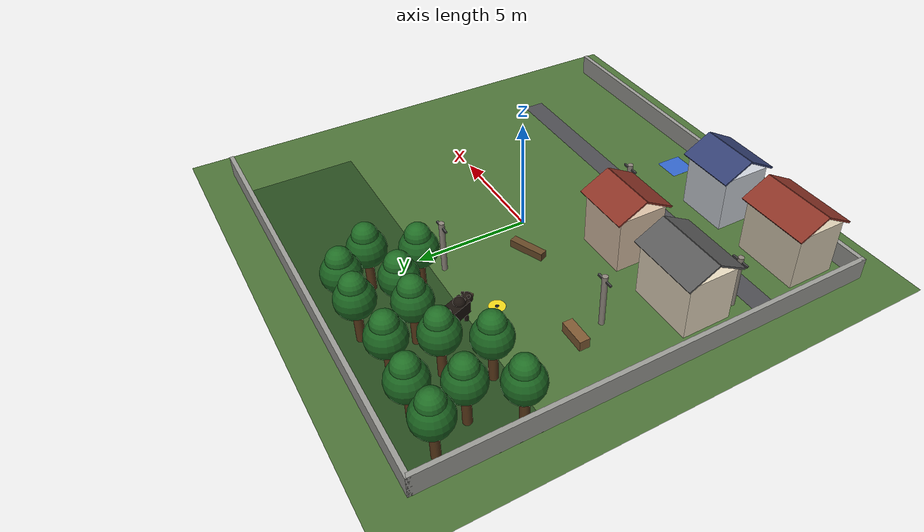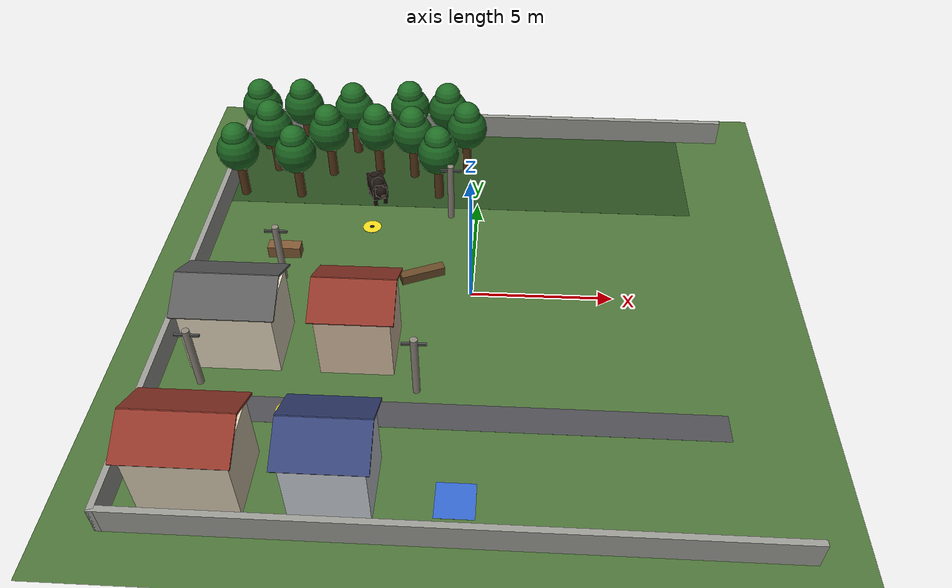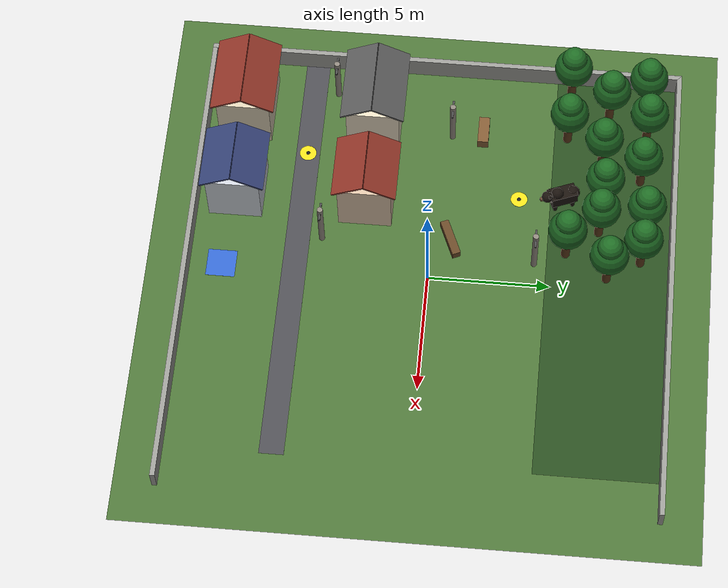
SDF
<sdf version="1.6">
 <world name="kumawatch_patrol">
  <model name="ground_plane">
   <static>true</static>
   <link name="link">
    <collision name="collision">
     <geometry><plane><normal>0 0 1</normal><size>60 60</size></plane></geometry>
     <surface><friction><ode><mu>100</mu><mu2>50</mu2></ode></friction></surface>
    </collision>
    <visual name="visual">
     <cast_shadows>false</cast_shadows>
     <geometry><plane><normal>0 0 1</normal><size>60 60</size></plane></geometry>
     <material><ambient>0.30 0.45 0.22 1</ambient><diffuse>0.30 0.45 0.22 1</diffuse></material>
    </visual>
   </link>
  </model>
  <model name="wall_north">
   <static>true</static>
   <pose>0.000 9.900 0.000 0.000 0.000 0.000</pose>
   <link name="link">
    <visual name="visual">
     <pose>0.000 0.000 0.500 0.000 0.000 0.000</pose>
     <geometry><box><size>20.000 0.200 1.000</size></box></geometry>
     <material>
      <ambient>0.600 0.600 0.580 1.00</ambient>
      <diffuse>0.600 0.600 0.580 1.00</diffuse>
      <specular>0.05 0.05 0.05 1</specular>
     </material>
    </visual>
    <collision name="collision">
     <pose>0.000 0.000 0.500 0.000 0.000 0.000</pose>
     <geometry><box><size>20.000 0.200 1.000</size></box></geometry>
    </collision>
   </link>
  </model>
  <model name="wall_south">
   <static>true</static>
   <pose>0.000 -9.900 0.000 0.000 0.000 0.000</pose>
   <link name="link">
    <visual name="visual">
     <pose>0.000 0.000 0.500 0.000 0.000 0.000</pose>
     <geometry><box><size>20.000 0.200 1.000</size></box></geometry>
     <material>
      <ambient>0.600 0.600 0.580 1.00</ambient>
      <diffuse>0.600 0.600 0.580 1.00</diffuse>
      <specular>0.05 0.05 0.05 1</specular>
     </material>
    </visual>
    <collision name="collision">
     <pose>0.000 0.000 0.500 0.000 0.000 0.000</pose>
     <geometry><box><size>20.000 0.200 1.000</size></box></geometry>
    </collision>
   </link>
  </model>
  <model name="wall_west">
   <static>true</static>
   <pose>-9.900 0.000 0.000 0.000 0.000 0.000</pose>
   <link name="link">
    <visual name="visual">
     <pose>0.000 0.000 0.500 0.000 0.000 0.000</pose>
     <geometry><box><size>0.200 20.000 1.000</size></box></geometry>
     <material>
      <ambient>0.600 0.600 0.580 1.00</ambient>
      <diffuse>0.600 0.600 0.580 1.00</diffuse>
      <specular>0.05 0.05 0.05 1</specular>
     </material>
    </visual>
    <collision name="collision">
     <pose>0.000 0.000 0.500 0.000 0.000 0.000</pose>
     <geometry><box><size>0.200 20.000 1.000</size></box></geometry>
    </collision>
   </link>
  </model>
  <model name="surface_forest_floor">
   <static>true</static>
   <pose>-0.850 7.400 0.000 0.000 0.000 0.000</pose>
   <link name="link">
    <visual name="visual">
     <pose>0.000 0.000 0.002 0.000 0.000 0.000</pose>
     <geometry><box><size>18.300 5.200 0.002</size></box></geometry>
     <material>
      <ambient>0.160 0.300 0.120 1.00</ambient>
      <diffuse>0.160 0.300 0.120 1.00</diffuse>
      <specular>0.05 0.05 0.05 1</specular>
     </material>
    </visual>
   </link>
  </model>
  <model name="surface_road">
   <static>true</static>
   <pose>-0.850 -5.500 0.000 0.000 0.000 0.000</pose>
   <link name="link">
    <visual name="visual">
     <pose>0.000 0.000 0.003 0.000 0.000 0.000</pose>
     <geometry><box><size>18.300 1.000 0.002</size></box></geometry>
     <material>
      <ambient>0.300 0.300 0.320 1.00</ambient>
      <diffuse>0.300 0.300 0.320 1.00</diffuse>
      <specular>0.05 0.05 0.05 1</specular>
     </material>
    </visual>
   </link>
  </model>
  <model name="surface_base_pad">
   <static>true</static>
   <pose>0.000 -8.500 0.000 0.000 0.000 0.000</pose>
   <link name="link">
    <visual name="visual">
     <pose>0.000 0.000 0.006 0.000 0.000 0.000</pose>
     <geometry><box><size>1.200 1.200 0.002</size></box></geometry>
     <material>
      <ambient>0.200 0.400 0.800 1.00</ambient>
      <diffuse>0.200 0.400 0.800 1.00</diffuse>
      <specular>0.05 0.05 0.05 1</specular>
     </material>
    </visual>
   </link>
  </model>
  <model name="house_1">
   <static>true</static>
   <pose>-7.500 -8.200 0.000 0.000 0.000 0.000</pose>
   <link name="link">
    <visual name="walls">
     <pose>0.000 0.000 1.250 0.000 0.000 0.000</pose>
     <geometry><box><size>3.000 2.200 2.500</size></box></geometry>
     <material>
      <ambient>0.850 0.800 0.700 1.00</ambient>
      <diffuse>0.850 0.800 0.700 1.00</diffuse>
      <specular>0.05 0.05 0.05 1</specular>
     </material>
    </visual>
    <collision name="collision">
     <pose>0.000 0.000 1.250 0.000 0.000 0.000</pose>
     <geometry><box><size>3.000 2.200 2.500</size></box></geometry>
    </collision>
    <visual name="roof_0">
     <pose>0.000 0.650 2.855 -0.500 0.000 0.000</pose>
     <geometry><box><size>3.300 1.481 0.080</size></box></geometry>
     <material>
      <ambient>0.550 0.200 0.150 1.00</ambient>
      <diffuse>0.550 0.200 0.150 1.00</diffuse>
      <specular>0.05 0.05 0.05 1</specular>
     </material>
    </visual>
    <visual name="roof_1">
     <pose>0.000 -0.650 2.855 0.500 0.000 0.000</pose>
     <geometry><box><size>3.300 1.481 0.080</size></box></geometry>
     <material>
      <ambient>0.550 0.200 0.150 1.00</ambient>
      <diffuse>0.550 0.200 0.150 1.00</diffuse>
      <specular>0.05 0.05 0.05 1</specular>
     </material>
    </visual>
   </link>
  </model>
  <model name="house_2">
   <static>true</static>
   <pose>-3.500 -8.200 0.000 0.000 0.000 0.000</pose>
   <link name="link">
    <visual name="walls">
     <pose>0.000 0.000 1.250 0.000 0.000 0.000</pose>
     <geometry><box><size>2.400 2.200 2.500</size></box></geometry>
     <material>
      <ambient>0.800 0.820 0.850 1.00</ambient>
      <diffuse>0.800 0.820 0.850 1.00</diffuse>
      <specular>0.05 0.05 0.05 1</specular>
     </material>
    </visual>
    <collision name="collision">
     <pose>0.000 0.000 1.250 0.000 0.000 0.000</pose>
     <geometry><box><size>2.400 2.200 2.500</size></box></geometry>
    </collision>
    <visual name="roof_0">
     <pose>0.000 0.650 2.855 -0.500 0.000 0.000</pose>
     <geometry><box><size>2.700 1.481 0.080</size></box></geometry>
     <material>
      <ambient>0.200 0.250 0.450 1.00</ambient>
      <diffuse>0.200 0.250 0.450 1.00</diffuse>
      <specular>0.05 0.05 0.05 1</specular>
     </material>
    </visual>
    <visual name="roof_1">
     <pose>0.000 -0.650 2.855 0.500 0.000 0.000</pose>
     <geometry><box><size>2.700 1.481 0.080</size></box></geometry>
     <material>
      <ambient>0.200 0.250 0.450 1.00</ambient>
      <diffuse>0.200 0.250 0.450 1.00</diffuse>
      <specular>0.05 0.05 0.05 1</specular>
     </material>
    </visual>
   </link>
  </model>
  <model name="house_3">
   <static>true</static>
   <pose>-7.500 -2.800 0.000 0.000 0.000 0.000</pose>
   <link name="link">
    <visual name="walls">
     <pose>0.000 0.000 1.250 0.000 0.000 0.000</pose>
     <geometry><box><size>3.000 2.200 2.500</size></box></geometry>
     <material>
      <ambient>0.900 0.850 0.750 1.00</ambient>
      <diffuse>0.900 0.850 0.750 1.00</diffuse>
      <specular>0.05 0.05 0.05 1</specular>
     </material>
    </visual>
    <collision name="collision">
     <pose>0.000 0.000 1.250 0.000 0.000 0.000</pose>
     <geometry><box><size>3.000 2.200 2.500</size></box></geometry>
    </collision>
    <visual name="roof_0">
     <pose>0.000 0.650 2.855 -0.500 0.000 0.000</pose>
     <geometry><box><size>3.300 1.481 0.080</size></box></geometry>
     <material>
      <ambient>0.350 0.350 0.350 1.00</ambient>
      <diffuse>0.350 0.350 0.350 1.00</diffuse>
      <specular>0.05 0.05 0.05 1</specular>
     </material>
    </visual>
    <visual name="roof_1">
     <pose>0.000 -0.650 2.855 0.500 0.000 0.000</pose>
     <geometry><box><size>3.300 1.481 0.080</size></box></geometry>
     <material>
      <ambient>0.350 0.350 0.350 1.00</ambient>
      <diffuse>0.350 0.350 0.350 1.00</diffuse>
      <specular>0.05 0.05 0.05 1</specular>
     </material>
    </visual>
   </link>
  </model>
  <model name="house_4">
   <static>true</static>
   <pose>-3.500 -2.800 0.000 0.000 0.000 0.000</pose>
   <link name="link">
    <visual name="walls">
     <pose>0.000 0.000 1.250 0.000 0.000 0.000</pose>
     <geometry><box><size>2.400 2.200 2.500</size></box></geometry>
     <material>
      <ambient>0.850 0.750 0.650 1.00</ambient>
      <diffuse>0.850 0.750 0.650 1.00</diffuse>
      <specular>0.05 0.05 0.05 1</specular>
     </material>
    </visual>
    <collision name="collision">
     <pose>0.000 0.000 1.250 0.000 0.000 0.000</pose>
     <geometry><box><size>2.400 2.200 2.500</size></box></geometry>
    </collision>
    <visual name="roof_0">
     <pose>0.000 0.650 2.855 -0.500 0.000 0.000</pose>
     <geometry><box><size>2.700 1.481 0.080</size></box></geometry>
     <material>
      <ambient>0.550 0.200 0.150 1.00</ambient>
      <diffuse>0.550 0.200 0.150 1.00</diffuse>
      <specular>0.05 0.05 0.05 1</specular>
     </material>
    </visual>
    <visual name="roof_1">
     <pose>0.000 -0.650 2.855 0.500 0.000 0.000</pose>
     <geometry><box><size>2.700 1.481 0.080</size></box></geometry>
     <material>
      <ambient>0.550 0.200 0.150 1.00</ambient>
      <diffuse>0.550 0.200 0.150 1.00</diffuse>
      <specular>0.05 0.05 0.05 1</specular>
     </material>
    </visual>
   </link>
  </model>
  <model name="tree_00">
   <static>true</static>
   <pose>-9.340 5.390 0.000 0.000 0.000 0.000</pose>
   <link name="link">
    <visual name="trunk">
     <pose>0.000 0.000 0.800 0.000 0.000 0.000</pose>
     <geometry><cylinder><radius>0.180</radius><length>1.600</length></cylinder></geometry>
     <material>
      <ambient>0.350 0.220 0.100 1.00</ambient>
      <diffuse>0.350 0.220 0.100 1.00</diffuse>
      <specular>0.05 0.05 0.05 1</specular>
     </material>
    </visual>
    <collision name="collision">
     <pose>0.000 0.000 0.800 0.000 0.000 0.000</pose>
     <geometry><cylinder><radius>0.180</radius><length>1.600</length></cylinder></geometry>
    </collision>
    <visual name="canopy">
     <pose>0.000 0.000 2.080 0.000 0.000 0.000</pose>
     <geometry><sphere><radius>0.800</radius></sphere></geometry>
     <material>
      <ambient>0.100 0.380 0.120 1.00</ambient>
      <diffuse>0.100 0.380 0.120 1.00</diffuse>
      <specular>0.05 0.05 0.05 1</specular>
     </material>
    </visual>
    <visual name="canopy_top">
     <pose>0.000 0.000 2.720 0.000 0.000 0.000</pose>
     <geometry><sphere><radius>0.520</radius></sphere></geometry>
     <material>
      <ambient>0.120 0.420 0.140 1.00</ambient>
      <diffuse>0.120 0.420 0.140 1.00</diffuse>
      <specular>0.05 0.05 0.05 1</specular>
     </material>
    </visual>
   </link>
  </model>
  <model name="tree_01">
   <static>true</static>
   <pose>-7.080 5.340 0.000 0.000 0.000 0.000</pose>
   <link name="link">
    <visual name="trunk">
     <pose>0.000 0.000 0.800 0.000 0.000 0.000</pose>
     <geometry><cylinder><radius>0.180</radius><length>1.600</length></cylinder></geometry>
     <material>
      <ambient>0.350 0.220 0.100 1.00</ambient>
      <diffuse>0.350 0.220 0.100 1.00</diffuse>
      <specular>0.05 0.05 0.05 1</specular>
     </material>
    </visual>
    <collision name="collision">
     <pose>0.000 0.000 0.800 0.000 0.000 0.000</pose>
     <geometry><cylinder><radius>0.180</radius><length>1.600</length></cylinder></geometry>
    </collision>
    <visual name="canopy">
     <pose>0.000 0.000 2.080 0.000 0.000 0.000</pose>
     <geometry><sphere><radius>0.800</radius></sphere></geometry>
     <material>
      <ambient>0.100 0.380 0.120 1.00</ambient>
      <diffuse>0.100 0.380 0.120 1.00</diffuse>
      <specular>0.05 0.05 0.05 1</specular>
     </material>
    </visual>
    <visual name="canopy_top">
     <pose>0.000 0.000 2.720 0.000 0.000 0.000</pose>
     <geometry><sphere><radius>0.520</radius></sphere></geometry>
     <material>
      <ambient>0.120 0.420 0.140 1.00</ambient>
      <diffuse>0.120 0.420 0.140 1.00</diffuse>
      <specular>0.05 0.05 0.05 1</specular>
     </material>
    </visual>
   </link>
  </model>
  <model name="tree_02">
   <static>true</static>
   <pose>-1.570 5.560 0.000 0.000 0.000 0.000</pose>
   <link name="link">
    <visual name="trunk">
     <pose>0.000 0.000 0.800 0.000 0.000 0.000</pose>
     <geometry><cylinder><radius>0.180</radius><length>1.600</length></cylinder></geometry>
     <material>
      <ambient>0.350 0.220 0.100 1.00</ambient>
      <diffuse>0.350 0.220 0.100 1.00</diffuse>
      <specular>0.05 0.05 0.05 1</specular>
     </material>
    </visual>
    <collision name="collision">
     <pose>0.000 0.000 0.800 0.000 0.000 0.000</pose>
     <geometry><cylinder><radius>0.180</radius><length>1.600</length></cylinder></geometry>
    </collision>
    <visual name="canopy">
     <pose>0.000 0.000 2.080 0.000 0.000 0.000</pose>
     <geometry><sphere><radius>0.800</radius></sphere></geometry>
     <material>
      <ambient>0.100 0.380 0.120 1.00</ambient>
      <diffuse>0.100 0.380 0.120 1.00</diffuse>
      <specular>0.05 0.05 0.05 1</specular>
     </material>
    </visual>
    <visual name="canopy_top">
     <pose>0.000 0.000 2.720 0.000 0.000 0.000</pose>
     <geometry><sphere><radius>0.520</radius></sphere></geometry>
     <material>
      <ambient>0.120 0.420 0.140 1.00</ambient>
      <diffuse>0.120 0.420 0.140 1.00</diffuse>
      <specular>0.05 0.05 0.05 1</specular>
     </material>
    </visual>
   </link>
  </model>
  <model name="tree_07">
   <static>true</static>
   <pose>-8.340 7.040 0.000 0.000 0.000 0.000</pose>
   <link name="link">
    <visual name="trunk">
     <pose>0.000 0.000 0.800 0.000 0.000 0.000</pose>
     <geometry><cylinder><radius>0.180</radius><length>1.600</length></cylinder></geometry>
     <material>
      <ambient>0.350 0.220 0.100 1.00</ambient>
      <diffuse>0.350 0.220 0.100 1.00</diffuse>
      <specular>0.05 0.05 0.05 1</specular>
     </material>
    </visual>
    <collision name="collision">
     <pose>0.000 0.000 0.800 0.000 0.000 0.000</pose>
     <geometry><cylinder><radius>0.180</radius><length>1.600</length></cylinder></geometry>
    </collision>
    <visual name="canopy">
     <pose>0.000 0.000 2.080 0.000 0.000 0.000</pose>
     <geometry><sphere><radius>0.800</radius></sphere></geometry>
     <material>
      <ambient>0.100 0.380 0.120 1.00</ambient>
      <diffuse>0.100 0.380 0.120 1.00</diffuse>
      <specular>0.05 0.05 0.05 1</specular>
     </material>
    </visual>
    <visual name="canopy_top">
     <pose>0.000 0.000 2.720 0.000 0.000 0.000</pose>
     <geometry><sphere><radius>0.520</radius></sphere></geometry>
     <material>
      <ambient>0.120 0.420 0.140 1.00</ambient>
      <diffuse>0.120 0.420 0.140 1.00</diffuse>
      <specular>0.05 0.05 0.05 1</specular>
     </material>
    </visual>
   </link>
  </model>
  <model name="tree_08">
   <static>true</static>
   <pose>-6.020 6.830 0.000 0.000 0.000 0.000</pose>
   <link name="link">
    <visual name="trunk">
     <pose>0.000 0.000 0.800 0.000 0.000 0.000</pose>
     <geometry><cylinder><radius>0.180</radius><length>1.600</length></cylinder></geometry>
     <material>
      <ambient>0.350 0.220 0.100 1.00</ambient>
      <diffuse>0.350 0.220 0.100 1.00</diffuse>
      <specular>0.05 0.05 0.05 1</specular>
     </material>
    </visual>
    <collision name="collision">
     <pose>0.000 0.000 0.800 0.000 0.000 0.000</pose>
     <geometry><cylinder><radius>0.180</radius><length>1.600</length></cylinder></geometry>
    </collision>
    <visual name="canopy">
     <pose>0.000 0.000 2.080 0.000 0.000 0.000</pose>
     <geometry><sphere><radius>0.800</radius></sphere></geometry>
     <material>
      <ambient>0.100 0.380 0.120 1.00</ambient>
      <diffuse>0.100 0.380 0.120 1.00</diffuse>
      <specular>0.05 0.05 0.05 1</specular>
     </material>
    </visual>
    <visual name="canopy_top">
     <pose>0.000 0.000 2.720 0.000 0.000 0.000</pose>
     <geometry><sphere><radius>0.520</radius></sphere></geometry>
     <material>
      <ambient>0.120 0.420 0.140 1.00</ambient>
      <diffuse>0.120 0.420 0.140 1.00</diffuse>
      <specular>0.05 0.05 0.05 1</specular>
     </material>
    </visual>
   </link>
  </model>
  <model name="tree_09">
   <static>true</static>
   <pose>-4.110 6.970 0.000 0.000 0.000 0.000</pose>
   <link name="link">
    <visual name="trunk">
     <pose>0.000 0.000 0.800 0.000 0.000 0.000</pose>
     <geometry><cylinder><radius>0.180</radius><length>1.600</length></cylinder></geometry>
     <material>
      <ambient>0.350 0.220 0.100 1.00</ambient>
      <diffuse>0.350 0.220 0.100 1.00</diffuse>
      <specular>0.05 0.05 0.05 1</specular>
     </material>
    </visual>
    <collision name="collision">
     <pose>0.000 0.000 0.800 0.000 0.000 0.000</pose>
     <geometry><cylinder><radius>0.180</radius><length>1.600</length></cylinder></geometry>
    </collision>
    <visual name="canopy">
     <pose>0.000 0.000 2.080 0.000 0.000 0.000</pose>
     <geometry><sphere><radius>0.800</radius></sphere></geometry>
     <material>
      <ambient>0.100 0.380 0.120 1.00</ambient>
      <diffuse>0.100 0.380 0.120 1.00</diffuse>
      <specular>0.05 0.05 0.05 1</specular>
     </material>
    </visual>
    <visual name="canopy_top">
     <pose>0.000 0.000 2.720 0.000 0.000 0.000</pose>
     <geometry><sphere><radius>0.520</radius></sphere></geometry>
     <material>
      <ambient>0.120 0.420 0.140 1.00</ambient>
      <diffuse>0.120 0.420 0.140 1.00</diffuse>
      <specular>0.05 0.05 0.05 1</specular>
     </material>
    </visual>
   </link>
  </model>
  <model name="tree_10">
   <static>true</static>
   <pose>-2.680 6.870 0.000 0.000 0.000 0.000</pose>
   <link name="link">
    <visual name="trunk">
     <pose>0.000 0.000 0.800 0.000 0.000 0.000</pose>
     <geometry><cylinder><radius>0.180</radius><length>1.600</length></cylinder></geometry>
     <material>
      <ambient>0.350 0.220 0.100 1.00</ambient>
      <diffuse>0.350 0.220 0.100 1.00</diffuse>
      <specular>0.05 0.05 0.05 1</specular>
     </material>
    </visual>
    <collision name="collision">
     <pose>0.000 0.000 0.800 0.000 0.000 0.000</pose>
     <geometry><cylinder><radius>0.180</radius><length>1.600</length></cylinder></geometry>
    </collision>
    <visual name="canopy">
     <pose>0.000 0.000 2.080 0.000 0.000 0.000</pose>
     <geometry><sphere><radius>0.800</radius></sphere></geometry>
     <material>
      <ambient>0.100 0.380 0.120 1.00</ambient>
      <diffuse>0.100 0.380 0.120 1.00</diffuse>
      <specular>0.05 0.05 0.05 1</specular>
     </material>
    </visual>
    <visual name="canopy_top">
     <pose>0.000 0.000 2.720 0.000 0.000 0.000</pose>
     <geometry><sphere><radius>0.520</radius></sphere></geometry>
     <material>
      <ambient>0.120 0.420 0.140 1.00</ambient>
      <diffuse>0.120 0.420 0.140 1.00</diffuse>
      <specular>0.05 0.05 0.05 1</specular>
     </material>
    </visual>
   </link>
  </model>
  <model name="tree_11">
   <static>true</static>
   <pose>-0.550 7.290 0.000 0.000 0.000 0.000</pose>
   <link name="link">
    <visual name="trunk">
     <pose>0.000 0.000 0.800 0.000 0.000 0.000</pose>
     <geometry><cylinder><radius>0.180</radius><length>1.600</length></cylinder></geometry>
     <material>
      <ambient>0.350 0.220 0.100 1.00</ambient>
      <diffuse>0.350 0.220 0.100 1.00</diffuse>
      <specular>0.05 0.05 0.05 1</specular>
     </material>
    </visual>
    <collision name="collision">
     <pose>0.000 0.000 0.800 0.000 0.000 0.000</pose>
     <geometry><cylinder><radius>0.180</radius><length>1.600</length></cylinder></geometry>
    </collision>
    <visual name="canopy">
     <pose>0.000 0.000 2.080 0.000 0.000 0.000</pose>
     <geometry><sphere><radius>0.800</radius></sphere></geometry>
     <material>
      <ambient>0.100 0.380 0.120 1.00</ambient>
      <diffuse>0.100 0.380 0.120 1.00</diffuse>
      <specular>0.05 0.05 0.05 1</specular>
     </material>
    </visual>
    <visual name="canopy_top">
     <pose>0.000 0.000 2.720 0.000 0.000 0.000</pose>
     <geometry><sphere><radius>0.520</radius></sphere></geometry>
     <material>
      <ambient>0.120 0.420 0.140 1.00</ambient>
      <diffuse>0.120 0.420 0.140 1.00</diffuse>
      <specular>0.05 0.05 0.05 1</specular>
     </material>
    </visual>
   </link>
  </model>
  <model name="tree_16">
   <static>true</static>
   <pose>-9.060 8.560 0.000 0.000 0.000 0.000</pose>
   <link name="link">
    <visual name="trunk">
     <pose>0.000 0.000 0.800 0.000 0.000 0.000</pose>
     <geometry><cylinder><radius>0.180</radius><length>1.600</length></cylinder></geometry>
     <material>
      <ambient>0.350 0.220 0.100 1.00</ambient>
      <diffuse>0.350 0.220 0.100 1.00</diffuse>
      <specular>0.05 0.05 0.05 1</specular>
     </material>
    </visual>
    <collision name="collision">
     <pose>0.000 0.000 0.800 0.000 0.000 0.000</pose>
     <geometry><cylinder><radius>0.180</radius><length>1.600</length></cylinder></geometry>
    </collision>
    <visual name="canopy">
     <pose>0.000 0.000 2.080 0.000 0.000 0.000</pose>
     <geometry><sphere><radius>0.800</radius></sphere></geometry>
     <material>
      <ambient>0.100 0.380 0.120 1.00</ambient>
      <diffuse>0.100 0.380 0.120 1.00</diffuse>
      <specular>0.05 0.05 0.05 1</specular>
     </material>
    </visual>
    <visual name="canopy_top">
     <pose>0.000 0.000 2.720 0.000 0.000 0.000</pose>
     <geometry><sphere><radius>0.520</radius></sphere></geometry>
     <material>
      <ambient>0.120 0.420 0.140 1.00</ambient>
      <diffuse>0.120 0.420 0.140 1.00</diffuse>
      <specular>0.05 0.05 0.05 1</specular>
     </material>
    </visual>
   </link>
  </model>
  <model name="tree_17">
   <static>true</static>
   <pose>-7.350 8.650 0.000 0.000 0.000 0.000</pose>
   <link name="link">
    <visual name="trunk">
     <pose>0.000 0.000 0.800 0.000 0.000 0.000</pose>
     <geometry><cylinder><radius>0.180</radius><length>1.600</length></cylinder></geometry>
     <material>
      <ambient>0.350 0.220 0.100 1.00</ambient>
      <diffuse>0.350 0.220 0.100 1.00</diffuse>
      <specular>0.05 0.05 0.05 1</specular>
     </material>
    </visual>
    <collision name="collision">
     <pose>0.000 0.000 0.800 0.000 0.000 0.000</pose>
     <geometry><cylinder><radius>0.180</radius><length>1.600</length></cylinder></geometry>
    </collision>
    <visual name="canopy">
     <pose>0.000 0.000 2.080 0.000 0.000 0.000</pose>
     <geometry><sphere><radius>0.800</radius></sphere></geometry>
     <material>
      <ambient>0.100 0.380 0.120 1.00</ambient>
      <diffuse>0.100 0.380 0.120 1.00</diffuse>
      <specular>0.05 0.05 0.05 1</specular>
     </material>
    </visual>
    <visual name="canopy_top">
     <pose>0.000 0.000 2.720 0.000 0.000 0.000</pose>
     <geometry><sphere><radius>0.520</radius></sphere></geometry>
     <material>
      <ambient>0.120 0.420 0.140 1.00</ambient>
      <diffuse>0.120 0.420 0.140 1.00</diffuse>
      <specular>0.05 0.05 0.05 1</specular>
     </material>
    </visual>
   </link>
  </model>
  <model name="tree_18">
   <static>true</static>
   <pose>-5.240 8.480 0.000 0.000 0.000 0.000</pose>
   <link name="link">
    <visual name="trunk">
     <pose>0.000 0.000 0.800 0.000 0.000 0.000</pose>
     <geometry><cylinder><radius>0.180</radius><length>1.600</length></cylinder></geometry>
     <material>
      <ambient>0.350 0.220 0.100 1.00</ambient>
      <diffuse>0.350 0.220 0.100 1.00</diffuse>
      <specular>0.05 0.05 0.05 1</specular>
     </material>
    </visual>
    <collision name="collision">
     <pose>0.000 0.000 0.800 0.000 0.000 0.000</pose>
     <geometry><cylinder><radius>0.180</radius><length>1.600</length></cylinder></geometry>
    </collision>
    <visual name="canopy">
     <pose>0.000 0.000 2.080 0.000 0.000 0.000</pose>
     <geometry><sphere><radius>0.800</radius></sphere></geometry>
     <material>
      <ambient>0.100 0.380 0.120 1.00</ambient>
      <diffuse>0.100 0.380 0.120 1.00</diffuse>
      <specular>0.05 0.05 0.05 1</specular>
     </material>
    </visual>
    <visual name="canopy_top">
     <pose>0.000 0.000 2.720 0.000 0.000 0.000</pose>
     <geometry><sphere><radius>0.520</radius></sphere></geometry>
     <material>
      <ambient>0.120 0.420 0.140 1.00</ambient>
      <diffuse>0.120 0.420 0.140 1.00</diffuse>
      <specular>0.05 0.05 0.05 1</specular>
     </material>
    </visual>
   </link>
  </model>
  <model name="tree_19">
   <static>true</static>
   <pose>-2.960 8.720 0.000 0.000 0.000 0.000</pose>
   <link name="link">
    <visual name="trunk">
     <pose>0.000 0.000 0.800 0.000 0.000 0.000</pose>
     <geometry><cylinder><radius>0.180</radius><length>1.600</length></cylinder></geometry>
     <material>
      <ambient>0.350 0.220 0.100 1.00</ambient>
      <diffuse>0.350 0.220 0.100 1.00</diffuse>
      <specular>0.05 0.05 0.05 1</specular>
     </material>
    </visual>
    <collision name="collision">
     <pose>0.000 0.000 0.800 0.000 0.000 0.000</pose>
     <geometry><cylinder><radius>0.180</radius><length>1.600</length></cylinder></geometry>
    </collision>
    <visual name="canopy">
     <pose>0.000 0.000 2.080 0.000 0.000 0.000</pose>
     <geometry><sphere><radius>0.800</radius></sphere></geometry>
     <material>
      <ambient>0.100 0.380 0.120 1.00</ambient>
      <diffuse>0.100 0.380 0.120 1.00</diffuse>
      <specular>0.05 0.05 0.05 1</specular>
     </material>
    </visual>
    <visual name="canopy_top">
     <pose>0.000 0.000 2.720 0.000 0.000 0.000</pose>
     <geometry><sphere><radius>0.520</radius></sphere></geometry>
     <material>
      <ambient>0.120 0.420 0.140 1.00</ambient>
      <diffuse>0.120 0.420 0.140 1.00</diffuse>
      <specular>0.05 0.05 0.05 1</specular>
     </material>
    </visual>
   </link>
  </model>
  <model name="tree_20">
   <static>true</static>
   <pose>-1.400 8.640 0.000 0.000 0.000 0.000</pose>
   <link name="link">
    <visual name="trunk">
     <pose>0.000 0.000 0.800 0.000 0.000 0.000</pose>
     <geometry><cylinder><radius>0.180</radius><length>1.600</length></cylinder></geometry>
     <material>
      <ambient>0.350 0.220 0.100 1.00</ambient>
      <diffuse>0.350 0.220 0.100 1.00</diffuse>
      <specular>0.05 0.05 0.05 1</specular>
     </material>
    </visual>
    <collision name="collision">
     <pose>0.000 0.000 0.800 0.000 0.000 0.000</pose>
     <geometry><cylinder><radius>0.180</radius><length>1.600</length></cylinder></geometry>
    </collision>
    <visual name="canopy">
     <pose>0.000 0.000 2.080 0.000 0.000 0.000</pose>
     <geometry><sphere><radius>0.800</radius></sphere></geometry>
     <material>
      <ambient>0.100 0.380 0.120 1.00</ambient>
      <diffuse>0.100 0.380 0.120 1.00</diffuse>
      <specular>0.05 0.05 0.05 1</specular>
     </material>
    </visual>
    <visual name="canopy_top">
     <pose>0.000 0.000 2.720 0.000 0.000 0.000</pose>
     <geometry><sphere><radius>0.520</radius></sphere></geometry>
     <material>
      <ambient>0.120 0.420 0.140 1.00</ambient>
      <diffuse>0.120 0.420 0.140 1.00</diffuse>
      <specular>0.05 0.05 0.05 1</specular>
     </material>
    </visual>
   </link>
  </model>
  <model name="pole_00">
   <static>true</static>
   <pose>-8.500 -4.500 0.000 0.000 0.000 0.000</pose>
   <link name="link">
    <visual name="pole">
     <pose>0.000 0.000 1.200 0.000 0.000 0.000</pose>
     <geometry><cylinder><radius>0.120</radius><length>2.400</length></cylinder></geometry>
     <material>
      <ambient>0.550 0.520 0.480 1.00</ambient>
      <diffuse>0.550 0.520 0.480 1.00</diffuse>
      <specular>0.05 0.05 0.05 1</specular>
     </material>
    </visual>
    <collision name="collision">
     <pose>0.000 0.000 1.200 0.000 0.000 0.000</pose>
     <geometry><cylinder><radius>0.120</radius><length>2.400</length></cylinder></geometry>
    </collision>
    <visual name="crossarm">
     <pose>0.000 0.000 2.200 0.000 0.000 0.000</pose>
     <geometry><box><size>0.800 0.080 0.080</size></box></geometry>
     <material>
      <ambient>0.300 0.300 0.300 1.00</ambient>
      <diffuse>0.300 0.300 0.300 1.00</diffuse>
      <specular>0.05 0.05 0.05 1</specular>
     </material>
    </visual>
   </link>
  </model>
  <model name="pole_01">
   <static>true</static>
   <pose>-1.500 -4.500 0.000 0.000 0.000 0.000</pose>
   <link name="link">
    <visual name="pole">
     <pose>0.000 0.000 1.200 0.000 0.000 0.000</pose>
     <geometry><cylinder><radius>0.120</radius><length>2.400</length></cylinder></geometry>
     <material>
      <ambient>0.550 0.520 0.480 1.00</ambient>
      <diffuse>0.550 0.520 0.480 1.00</diffuse>
      <specular>0.05 0.05 0.05 1</specular>
     </material>
    </visual>
    <collision name="collision">
     <pose>0.000 0.000 1.200 0.000 0.000 0.000</pose>
     <geometry><cylinder><radius>0.120</radius><length>2.400</length></cylinder></geometry>
    </collision>
    <visual name="crossarm">
     <pose>0.000 0.000 2.200 0.000 0.000 0.000</pose>
     <geometry><box><size>0.800 0.080 0.080</size></box></geometry>
     <material>
      <ambient>0.300 0.300 0.300 1.00</ambient>
      <diffuse>0.300 0.300 0.300 1.00</diffuse>
      <specular>0.05 0.05 0.05 1</specular>
     </material>
    </visual>
   </link>
  </model>
  <model name="pole_06">
   <static>true</static>
   <pose>-6.800 0.500 0.000 0.000 0.000 0.000</pose>
   <link name="link">
    <visual name="pole">
     <pose>0.000 0.000 1.200 0.000 0.000 0.000</pose>
     <geometry><cylinder><radius>0.120</radius><length>2.400</length></cylinder></geometry>
     <material>
      <ambient>0.550 0.520 0.480 1.00</ambient>
      <diffuse>0.550 0.520 0.480 1.00</diffuse>
      <specular>0.05 0.05 0.05 1</specular>
     </material>
    </visual>
    <collision name="collision">
     <pose>0.000 0.000 1.200 0.000 0.000 0.000</pose>
     <geometry><cylinder><radius>0.120</radius><length>2.400</length></cylinder></geometry>
    </collision>
    <visual name="crossarm">
     <pose>0.000 0.000 2.200 0.000 0.000 0.000</pose>
     <geometry><box><size>0.800 0.080 0.080</size></box></geometry>
     <material>
      <ambient>0.300 0.300 0.300 1.00</ambient>
      <diffuse>0.300 0.300 0.300 1.00</diffuse>
      <specular>0.05 0.05 0.05 1</specular>
     </material>
    </visual>
   </link>
  </model>
  <model name="pole_07">
   <static>true</static>
   <pose>-1.000 4.300 0.000 0.000 0.000 0.000</pose>
   <link name="link">
    <visual name="pole">
     <pose>0.000 0.000 1.200 0.000 0.000 0.000</pose>
     <geometry><cylinder><radius>0.120</radius><length>2.400</length></cylinder></geometry>
     <material>
      <ambient>0.550 0.520 0.480 1.00</ambient>
      <diffuse>0.550 0.520 0.480 1.00</diffuse>
      <specular>0.05 0.05 0.05 1</specular>
     </material>
    </visual>
    <collision name="collision">
     <pose>0.000 0.000 1.200 0.000 0.000 0.000</pose>
     <geometry><cylinder><radius>0.120</radius><length>2.400</length></cylinder></geometry>
    </collision>
    <visual name="crossarm">
     <pose>0.000 0.000 2.200 0.000 0.000 0.000</pose>
     <geometry><box><size>0.800 0.080 0.080</size></box></geometry>
     <material>
      <ambient>0.300 0.300 0.300 1.00</ambient>
      <diffuse>0.300 0.300 0.300 1.00</diffuse>
      <specular>0.05 0.05 0.05 1</specular>
     </material>
    </visual>
   </link>
  </model>
  <model name="fallen_log">
   <static>true</static>
   <pose>-1.800 0.800 0.000 0.000 0.000 0.400</pose>
   <link name="link">
    <visual name="visual">
     <pose>0.000 0.000 0.175 0.000 0.000 0.000</pose>
     <geometry><box><size>1.600 0.350 0.350</size></box></geometry>
     <material>
      <ambient>0.400 0.280 0.150 1.00</ambient>
      <diffuse>0.400 0.280 0.150 1.00</diffuse>
      <specular>0.05 0.05 0.05 1</specular>
     </material>
    </visual>
    <collision name="collision">
     <pose>0.000 0.000 0.175 0.000 0.000 0.000</pose>
     <geometry><box><size>1.600 0.350 0.350</size></box></geometry>
    </collision>
   </link>
  </model>
  <model name="bench_1">
   <static>true</static>
   <pose>-7.000 1.800 0.000 0.000 0.000 0.000</pose>
   <link name="link">
    <visual name="visual">
     <pose>0.000 0.000 0.225 0.000 0.000 0.000</pose>
     <geometry><box><size>1.200 0.450 0.450</size></box></geometry>
     <material>
      <ambient>0.500 0.350 0.200 1.00</ambient>
      <diffuse>0.500 0.350 0.200 1.00</diffuse>
      <specular>0.05 0.05 0.05 1</specular>
     </material>
    </visual>
    <collision name="collision">
     <pose>0.000 0.000 0.225 0.000 0.000 0.000</pose>
     <geometry><box><size>1.200 0.450 0.450</size></box></geometry>
    </collision>
   </link>
  </model>
  <model name="bear_1">
   <static>true</static>
   <pose>-4.000 5.300 0.000 0.000 0.000 -1.200</pose>
   <link name="link">
    <visual name="body">
     <pose>0.000 0.000 0.620 0.000 0.000 0.000</pose>
     <geometry><box><size>1.100 0.600 0.550</size></box></geometry>
     <material>
      <ambient>0.100 0.070 0.050 1.00</ambient>
      <diffuse>0.100 0.070 0.050 1.00</diffuse>
      <specular>0.05 0.05 0.05 1</specular>
     </material>
    </visual>
    <visual name="hump">
     <pose>0.250 0.000 0.880 0.000 0.000 0.000</pose>
     <geometry><sphere><radius>0.260</radius></sphere></geometry>
     <material>
      <ambient>0.100 0.070 0.050 1.00</ambient>
      <diffuse>0.100 0.070 0.050 1.00</diffuse>
      <specular>0.05 0.05 0.05 1</specular>
     </material>
    </visual>
    <visual name="rump">
     <pose>-0.420 0.000 0.660 0.000 0.000 0.000</pose>
     <geometry><sphere><radius>0.300</radius></sphere></geometry>
     <material>
      <ambient>0.100 0.070 0.050 1.00</ambient>
      <diffuse>0.100 0.070 0.050 1.00</diffuse>
      <specular>0.05 0.05 0.05 1</specular>
     </material>
    </visual>
    <visual name="head">
     <pose>0.680 0.000 0.820 0.000 0.000 0.000</pose>
     <geometry><sphere><radius>0.240</radius></sphere></geometry>
     <material>
      <ambient>0.100 0.070 0.050 1.00</ambient>
      <diffuse>0.100 0.070 0.050 1.00</diffuse>
      <specular>0.05 0.05 0.05 1</specular>
     </material>
    </visual>
    <visual name="muzzle">
     <pose>0.900 0.000 0.760 0.000 0.000 0.000</pose>
     <geometry><box><size>0.180 0.140 0.120</size></box></geometry>
     <material>
      <ambient>0.450 0.330 0.220 1.00</ambient>
      <diffuse>0.450 0.330 0.220 1.00</diffuse>
      <specular>0.05 0.05 0.05 1</specular>
     </material>
    </visual>
    <visual name="nose">
     <pose>0.990 0.000 0.780 0.000 0.000 0.000</pose>
     <geometry><sphere><radius>0.035</radius></sphere></geometry>
     <material>
      <ambient>0.020 0.020 0.020 1.00</ambient>
      <diffuse>0.020 0.020 0.020 1.00</diffuse>
      <specular>0.05 0.05 0.05 1</specular>
     </material>
    </visual>
    <visual name="ear_l">
     <pose>0.620 0.150 1.020 0.000 0.000 0.000</pose>
     <geometry><sphere><radius>0.070</radius></sphere></geometry>
     <material>
      <ambient>0.100 0.070 0.050 1.00</ambient>
      <diffuse>0.100 0.070 0.050 1.00</diffuse>
      <specular>0.05 0.05 0.05 1</specular>
     </material>
    </visual>
    <visual name="ear_r">
     <pose>0.620 -0.150 1.020 0.000 0.000 0.000</pose>
     <geometry><sphere><radius>0.070</radius></sphere></geometry>
     <material>
      <ambient>0.100 0.070 0.050 1.00</ambient>
      <diffuse>0.100 0.070 0.050 1.00</diffuse>
      <specular>0.05 0.05 0.05 1</specular>
     </material>
    </visual>
    <visual name="eye_l">
     <pose>0.860 0.090 0.880 0.000 0.000 0.000</pose>
     <geometry><sphere><radius>0.025</radius></sphere></geometry>
     <material>
      <ambient>0.000 0.000 0.000 1.00</ambient>
      <diffuse>0.000 0.000 0.000 1.00</diffuse>
      <specular>0.05 0.05 0.05 1</specular>
     </material>
    </visual>
    <visual name="eye_r">
     <pose>0.860 -0.090 0.880 0.000 0.000 0.000</pose>
     <geometry><sphere><radius>0.025</radius></sphere></geometry>
     <material>
      <ambient>0.000 0.000 0.000 1.00</ambient>
      <diffuse>0.000 0.000 0.000 1.00</diffuse>
      <specular>0.05 0.05 0.05 1</specular>
     </material>
    </visual>
    <visual name="chest_mark">
     <pose>0.560 0.000 0.600 0.000 0.000 0.000</pose>
     <geometry><box><size>0.040 0.400 0.100</size></box></geometry>
     <material>
      <ambient>0.850 0.820 0.750 1.00</ambient>
      <diffuse>0.850 0.820 0.750 1.00</diffuse>
      <specular>0.05 0.05 0.05 1</specular>
     </material>
    </visual>
    <visual name="leg_0">
     <pose>0.380 0.200 0.200 0.000 0.000 0.000</pose>
     <geometry><cylinder><radius>0.090</radius><length>0.400</length></cylinder></geometry>
     <material>
      <ambient>0.100 0.070 0.050 1.00</ambient>
      <diffuse>0.100 0.070 0.050 1.00</diffuse>
      <specular>0.05 0.05 0.05 1</specular>
     </material>
    </visual>
    <visual name="leg_1">
     <pose>0.380 -0.200 0.200 0.000 0.000 0.000</pose>
     <geometry><cylinder><radius>0.090</radius><length>0.400</length></cylinder></geometry>
     <material>
      <ambient>0.100 0.070 0.050 1.00</ambient>
      <diffuse>0.100 0.070 0.050 1.00</diffuse>
      <specular>0.05 0.05 0.05 1</specular>
     </material>
    </visual>
    <visual name="leg_2">
     <pose>-0.380 0.200 0.200 0.000 0.000 0.000</pose>
     <geometry><cylinder><radius>0.090</radius><length>0.400</length></cylinder></geometry>
     <material>
      <ambient>0.100 0.070 0.050 1.00</ambient>
      <diffuse>0.100 0.070 0.050 1.00</diffuse>
      <specular>0.05 0.05 0.05 1</specular>
     </material>
    </visual>
    <visual name="leg_3">
     <pose>-0.380 -0.200 0.200 0.000 0.000 0.000</pose>
     <geometry><cylinder><radius>0.090</radius><length>0.400</length></cylinder></geometry>
     <material>
      <ambient>0.100 0.070 0.050 1.00</ambient>
      <diffuse>0.100 0.070 0.050 1.00</diffuse>
      <specular>0.05 0.05 0.05 1</specular>
     </material>
    </visual>
    <collision name="collision">
     <pose>0.050 0.000 0.500 0.000 0.000 0.000</pose>
     <geometry><box><size>1.300 0.600 1.000</size></box></geometry>
    </collision>
   </link>
  </model>
  <model name="patrol_point_P1">
   <static>true</static>
   <pose>-5.500 -5.500 0.000 0.000 0.000 0.000</pose>
   <link name="link">
    <visual name="disc">
     <pose>0.000 0.000 0.006 0.000 0.000 0.000</pose>
     <geometry><cylinder><radius>0.350</radius><length>0.004</length></cylinder></geometry>
     <material>
      <ambient>0.950 0.850 0.100 1.00</ambient>
      <diffuse>0.950 0.850 0.100 1.00</diffuse>
      <specular>0.05 0.05 0.05 1</specular>
     </material>
    </visual>
    <visual name="center">
     <pose>0.000 0.000 0.008 0.000 0.000 0.000</pose>
     <geometry><cylinder><radius>0.080</radius><length>0.004</length></cylinder></geometry>
     <material>
      <ambient>0.100 0.100 0.100 1.00</ambient>
      <diffuse>0.100 0.100 0.100 1.00</diffuse>
      <specular>0.05 0.05 0.05 1</specular>
     </material>
    </visual>
   </link>
  </model>
  <model name="patrol_point_P2">
   <static>true</static>
   <pose>-4.000 3.500 0.000 0.000 0.000 0.000</pose>
   <link name="link">
    <visual name="disc">
     <pose>0.000 0.000 0.006 0.000 0.000 0.000</pose>
     <geometry><cylinder><radius>0.350</radius><length>0.004</length></cylinder></geometry>
     <material>
      <ambient>0.950 0.850 0.100 1.00</ambient>
      <diffuse>0.950 0.850 0.100 1.00</diffuse>
      <specular>0.05 0.05 0.05 1</specular>
     </material>
    </visual>
    <visual name="center">
     <pose>0.000 0.000 0.008 0.000 0.000 0.000</pose>
     <geometry><cylinder><radius>0.080</radius><length>0.004</length></cylinder></geometry>
     <material>
      <ambient>0.100 0.100 0.100 1.00</ambient>
      <diffuse>0.100 0.100 0.100 1.00</diffuse>
      <specular>0.05 0.05 0.05 1</specular>
     </material>
    </visual>
   </link>
  </model>
 </world>
</sdf>
